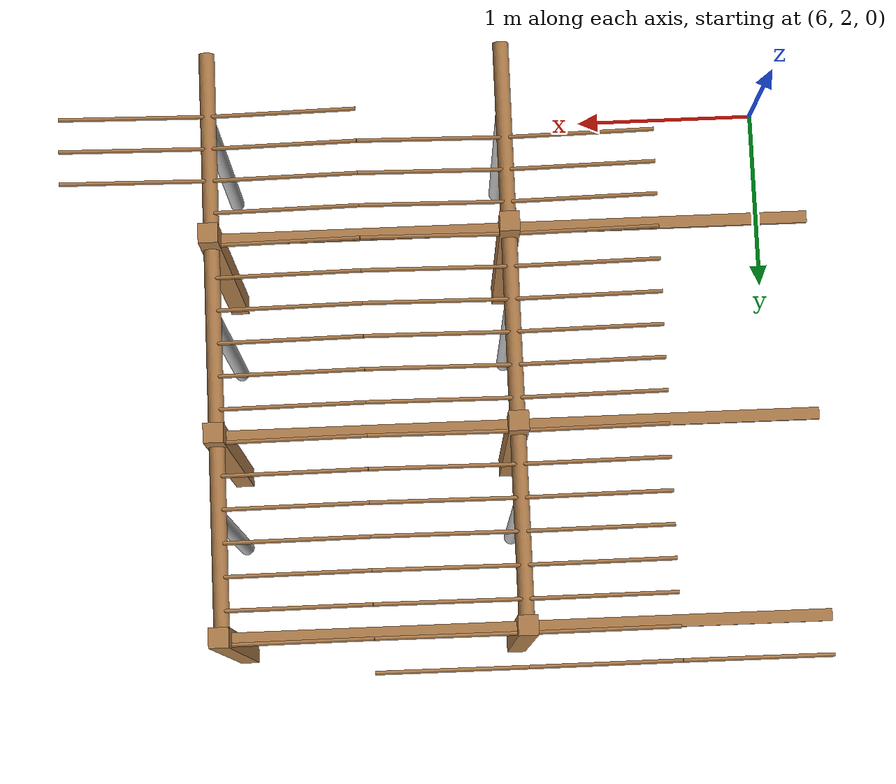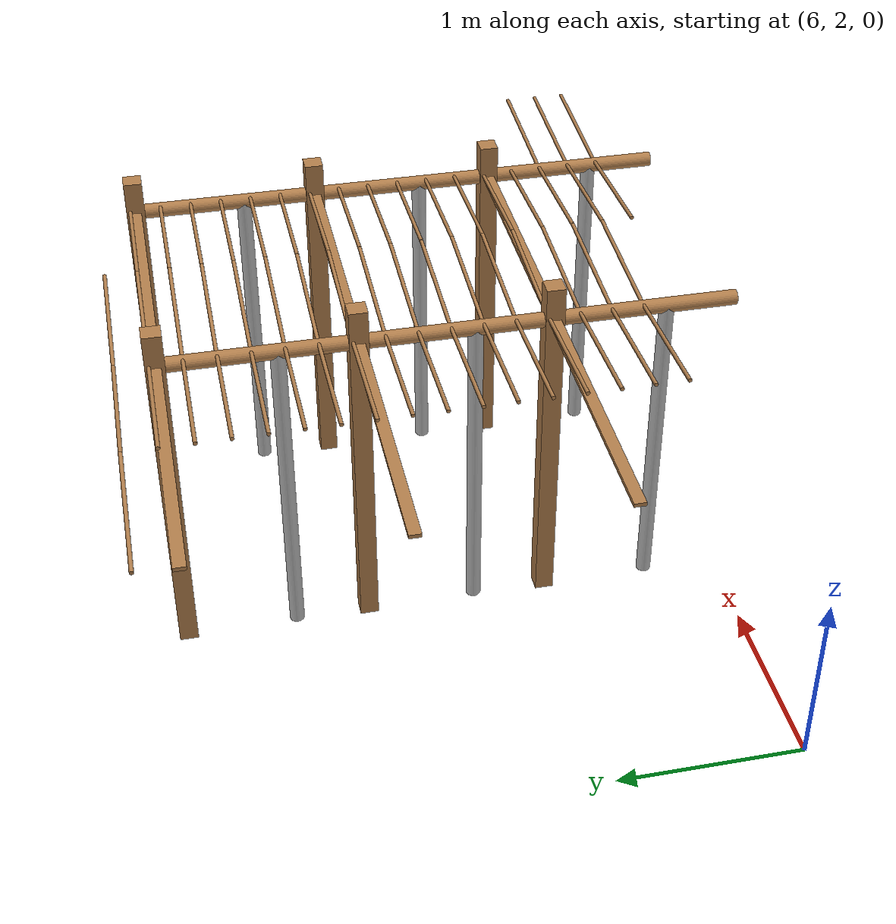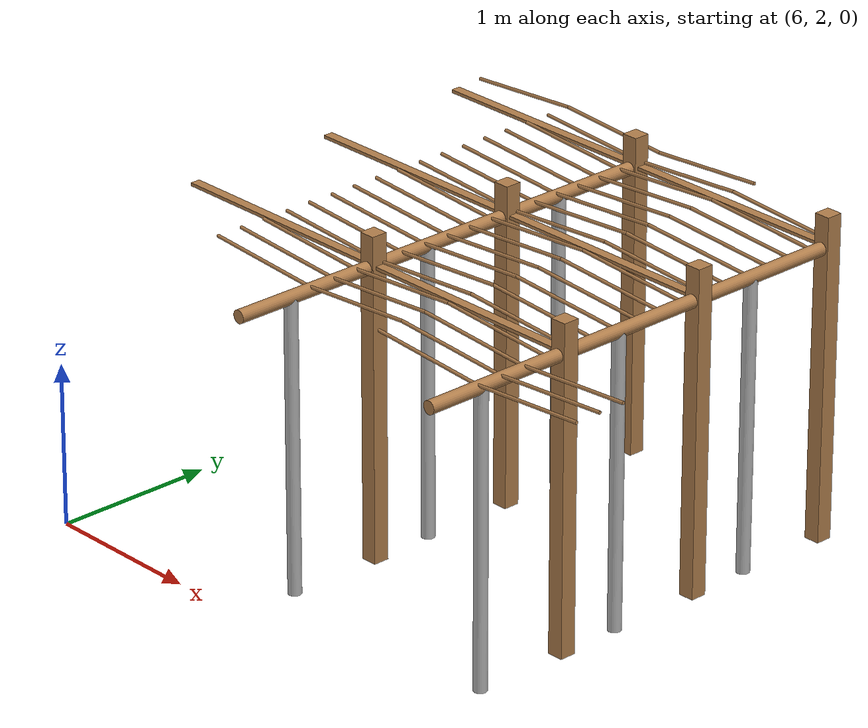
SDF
<sdf version="1.4">
 <model name="pergola">
  <include><name>post_58</name><pose>7.5 3.0 0 0 0 0</pose><uri>model://post</uri></include>
  <include><name>post_59</name><pose>7.5 4.0 0 0 0 0</pose><uri>model://post</uri></include>
  <include><name>post_60</name><pose>7.5 5.0 0 0 0 0</pose><uri>model://post</uri></include>
  <include><name>post_69</name><pose>9.0 3.0 0 0 0 0</pose><uri>model://post</uri></include>
  <include><name>post_70</name><pose>9.0 4.0 0 0 0 0</pose><uri>model://post</uri></include>
  <include><name>post_71</name><pose>9.0 5.0 0 0 0 0</pose><uri>model://post</uri></include>
  <link name="beam_47">
   <pose>6.75 3.0 1.81 0 0 0</pose>
   <collision name="collision"><geometry><box><size>1.5 0.06 0.02</size></box></geometry></collision>
   <visual name="visual">
    <geometry><box><size>1.5 0.06 0.02</size></box></geometry>
    <material><script><name>Gazebo/Wood</name></script></material>
   </visual>
   <inertial>
    <mass>5</mass>
    <inertia>
     <ixx>0.0016666666666666668</ixx>
     <ixy>0.0</ixy>
     <ixz>0.0</ixz>
     <iyy>0.9390000000000001</iyy>
     <iyz>0.0</iyz>
     <izz>0.9376666666666665</izz>
    </inertia>
   </inertial>
  </link>
  <link name="beam_48">
   <pose>6.75 4.0 1.81 0 0 0</pose>
   <collision name="collision"><geometry><box><size>1.5 0.06 0.02</size></box></geometry></collision>
   <visual name="visual">
    <geometry><box><size>1.5 0.06 0.02</size></box></geometry>
    <material><script><name>Gazebo/Wood</name></script></material>
   </visual>
   <inertial>
    <mass>5</mass>
    <inertia>
     <ixx>0.0016666666666666668</ixx>
     <ixy>0.0</ixy>
     <ixz>0.0</ixz>
     <iyy>0.9390000000000001</iyy>
     <iyz>0.0</iyz>
     <izz>0.9376666666666665</izz>
    </inertia>
   </inertial>
  </link>
  <link name="beam_49">
   <pose>6.75 5.0 1.81 0 0 0</pose>
   <collision name="collision"><geometry><box><size>1.5 0.06 0.02</size></box></geometry></collision>
   <visual name="visual">
    <geometry><box><size>1.5 0.06 0.02</size></box></geometry>
    <material><script><name>Gazebo/Wood</name></script></material>
   </visual>
   <inertial>
    <mass>5</mass>
    <inertia>
     <ixx>0.0016666666666666668</ixx>
     <ixy>0.0</ixy>
     <ixz>0.0</ixz>
     <iyy>0.9390000000000001</iyy>
     <iyz>0.0</iyz>
     <izz>0.9376666666666665</izz>
    </inertia>
   </inertial>
  </link>
  <link name="beam_58">
   <pose>8.25 3.0 1.81 0 0 0</pose>
   <collision name="collision"><geometry><box><size>1.5 0.06 0.02</size></box></geometry></collision>
   <visual name="visual">
    <geometry><box><size>1.5 0.06 0.02</size></box></geometry>
    <material><script><name>Gazebo/Wood</name></script></material>
   </visual>
   <inertial>
    <mass>5</mass>
    <inertia>
     <ixx>0.0016666666666666668</ixx>
     <ixy>0.0</ixy>
     <ixz>0.0</ixz>
     <iyy>0.9390000000000001</iyy>
     <iyz>0.0</iyz>
     <izz>0.9376666666666665</izz>
    </inertia>
   </inertial>
  </link>
  <link name="beam_59">
   <pose>8.25 4.0 1.81 0 0 0</pose>
   <collision name="collision"><geometry><box><size>1.5 0.06 0.02</size></box></geometry></collision>
   <visual name="visual">
    <geometry><box><size>1.5 0.06 0.02</size></box></geometry>
    <material><script><name>Gazebo/Wood</name></script></material>
   </visual>
   <inertial>
    <mass>5</mass>
    <inertia>
     <ixx>0.0016666666666666668</ixx>
     <ixy>0.0</ixy>
     <ixz>0.0</ixz>
     <iyy>0.9390000000000001</iyy>
     <iyz>0.0</iyz>
     <izz>0.9376666666666665</izz>
    </inertia>
   </inertial>
  </link>
  <link name="beam_60">
   <pose>8.25 5.0 1.81 0 0 0</pose>
   <collision name="collision"><geometry><box><size>1.5 0.06 0.02</size></box></geometry></collision>
   <visual name="visual">
    <geometry><box><size>1.5 0.06 0.02</size></box></geometry>
    <material><script><name>Gazebo/Wood</name></script></material>
   </visual>
   <inertial>
    <mass>5</mass>
    <inertia>
     <ixx>0.0016666666666666668</ixx>
     <ixy>0.0</ixy>
     <ixz>0.0</ixz>
     <iyy>0.9390000000000001</iyy>
     <iyz>0.0</iyz>
     <izz>0.9376666666666665</izz>
    </inertia>
   </inertial>
  </link>
  <include><name>tree_52</name><pose>7.5 2.4 0 0 0 0</pose><uri>model://tree_trunk</uri></include>
  <include><name>tree_53</name><pose>7.5 3.4 0 0 0 0</pose><uri>model://tree_trunk</uri></include>
  <include><name>tree_54</name><pose>7.5 4.4 0 0 0 0</pose><uri>model://tree_trunk</uri></include>
  <include><name>tree_62</name><pose>9.0 2.4 0 0 0 0</pose><uri>model://tree_trunk</uri></include>
  <include><name>tree_63</name><pose>9.0 3.4 0 0 0 0</pose><uri>model://tree_trunk</uri></include>
  <include><name>tree_64</name><pose>9.0 4.4 0 0 0 0</pose><uri>model://tree_trunk</uri></include>
  <link name="baseBranch_52">
   <pose>7.5 2.5 1.8 1.5707963267948966 0 0</pose>
   <collision name="collision">
    <geometry><cylinder><radius>0.04</radius><length>0.94</length></cylinder></geometry>
   </collision>
   <visual name="visual">
    <geometry><cylinder><radius>0.04</radius><length>0.94</length></cylinder></geometry>
    <material><script><name>Gazebo/WoodFloor</name></script></material>
   </visual>
   <inertial>
    <mass>10</mass>
    <inertia>
     <ixx>0.7403333333333334</ixx>
     <ixy>0.0</ixy>
     <ixz>0.0</ixz>
     <iyy>0.7403333333333334</iyy>
     <iyz>0.0</iyz>
     <izz>0.008</izz>
    </inertia>
   </inertial>
  </link>
  <link name="baseBranch_53">
   <pose>7.5 3.5 1.8 1.5707963267948966 0 0</pose>
   <collision name="collision">
    <geometry><cylinder><radius>0.04</radius><length>0.94</length></cylinder></geometry>
   </collision>
   <visual name="visual">
    <geometry><cylinder><radius>0.04</radius><length>0.94</length></cylinder></geometry>
    <material><script><name>Gazebo/WoodFloor</name></script></material>
   </visual>
   <inertial>
    <mass>10</mass>
    <inertia>
     <ixx>0.7403333333333334</ixx>
     <ixy>0.0</ixy>
     <ixz>0.0</ixz>
     <iyy>0.7403333333333334</iyy>
     <iyz>0.0</iyz>
     <izz>0.008</izz>
    </inertia>
   </inertial>
  </link>
  <link name="baseBranch_54">
   <pose>7.5 4.5 1.8 1.5707963267948966 0 0</pose>
   <collision name="collision">
    <geometry><cylinder><radius>0.04</radius><length>0.94</length></cylinder></geometry>
   </collision>
   <visual name="visual">
    <geometry><cylinder><radius>0.04</radius><length>0.94</length></cylinder></geometry>
    <material><script><name>Gazebo/WoodFloor</name></script></material>
   </visual>
   <inertial>
    <mass>10</mass>
    <inertia>
     <ixx>0.7403333333333334</ixx>
     <ixy>0.0</ixy>
     <ixz>0.0</ixz>
     <iyy>0.7403333333333334</iyy>
     <iyz>0.0</iyz>
     <izz>0.008</izz>
    </inertia>
   </inertial>
  </link>
  <link name="baseBranch_62">
   <pose>9.0 2.5 1.8 1.5707963267948966 0 0</pose>
   <collision name="collision">
    <geometry><cylinder><radius>0.04</radius><length>0.94</length></cylinder></geometry>
   </collision>
   <visual name="visual">
    <geometry><cylinder><radius>0.04</radius><length>0.94</length></cylinder></geometry>
    <material><script><name>Gazebo/WoodFloor</name></script></material>
   </visual>
   <inertial>
    <mass>10</mass>
    <inertia>
     <ixx>0.7403333333333334</ixx>
     <ixy>0.0</ixy>
     <ixz>0.0</ixz>
     <iyy>0.7403333333333334</iyy>
     <iyz>0.0</iyz>
     <izz>0.008</izz>
    </inertia>
   </inertial>
  </link>
  <link name="baseBranch_63">
   <pose>9.0 3.5 1.8 1.5707963267948966 0 0</pose>
   <collision name="collision">
    <geometry><cylinder><radius>0.04</radius><length>0.94</length></cylinder></geometry>
   </collision>
   <visual name="visual">
    <geometry><cylinder><radius>0.04</radius><length>0.94</length></cylinder></geometry>
    <material><script><name>Gazebo/WoodFloor</name></script></material>
   </visual>
   <inertial>
    <mass>10</mass>
    <inertia>
     <ixx>0.7403333333333334</ixx>
     <ixy>0.0</ixy>
     <ixz>0.0</ixz>
     <iyy>0.7403333333333334</iyy>
     <iyz>0.0</iyz>
     <izz>0.008</izz>
    </inertia>
   </inertial>
  </link>
  <link name="baseBranch_64">
   <pose>9.0 4.5 1.8 1.5707963267948966 0 0</pose>
   <collision name="collision">
    <geometry><cylinder><radius>0.04</radius><length>0.94</length></cylinder></geometry>
   </collision>
   <visual name="visual">
    <geometry><cylinder><radius>0.04</radius><length>0.94</length></cylinder></geometry>
    <material><script><name>Gazebo/WoodFloor</name></script></material>
   </visual>
   <inertial>
    <mass>10</mass>
    <inertia>
     <ixx>0.7403333333333334</ixx>
     <ixy>0.0</ixy>
     <ixz>0.0</ixz>
     <iyy>0.7403333333333334</iyy>
     <iyz>0.0</iyz>
     <izz>0.008</izz>
    </inertia>
   </inertial>
  </link>
  <link name="vine_511">
   <pose>7.125 2.53 1.85 0 -1.5042281630190728 0</pose>
   <collision name="collision">
    <geometry><cylinder><radius>0.01</radius><length>0.7516648189186453</length></cylinder></geometry>
   </collision>
   <visual name="visual">
    <geometry><cylinder><radius>0.01</radius><length>0.7516648189186453</length></cylinder></geometry>
    <material><script><name>Gazebo/WoodFloor</name></script></material>
   </visual>
   <inertial>
    <mass>5</mass>
    <inertia>
     <ixx>0.23554166666666657</ixx>
     <ixy>0.0</ixy>
     <ixz>0.0</ixz>
     <iyy>0.23554166666666657</iyy>
     <iyz>0.0</iyz>
     <izz>0.00025</izz>
    </inertia>
   </inertial>
  </link>
  <link name="vine_513">
   <pose>7.125 2.6966666666666663 1.85 0 -1.5042281630190728 0</pose>
   <collision name="collision">
    <geometry><cylinder><radius>0.01</radius><length>0.7516648189186453</length></cylinder></geometry>
   </collision>
   <visual name="visual">
    <geometry><cylinder><radius>0.01</radius><length>0.7516648189186453</length></cylinder></geometry>
    <material><script><name>Gazebo/WoodFloor</name></script></material>
   </visual>
   <inertial>
    <mass>5</mass>
    <inertia>
     <ixx>0.23554166666666657</ixx>
     <ixy>0.0</ixy>
     <ixz>0.0</ixz>
     <iyy>0.23554166666666657</iyy>
     <iyz>0.0</iyz>
     <izz>0.00025</izz>
    </inertia>
   </inertial>
  </link>
  <link name="vine_515">
   <pose>7.125 2.863333333333333 1.85 0 -1.5042281630190728 0</pose>
   <collision name="collision">
    <geometry><cylinder><radius>0.01</radius><length>0.7516648189186453</length></cylinder></geometry>
   </collision>
   <visual name="visual">
    <geometry><cylinder><radius>0.01</radius><length>0.7516648189186453</length></cylinder></geometry>
    <material><script><name>Gazebo/WoodFloor</name></script></material>
   </visual>
   <inertial>
    <mass>5</mass>
    <inertia>
     <ixx>0.23554166666666657</ixx>
     <ixy>0.0</ixy>
     <ixz>0.0</ixz>
     <iyy>0.23554166666666657</iyy>
     <iyz>0.0</iyz>
     <izz>0.00025</izz>
    </inertia>
   </inertial>
  </link>
  <link name="vine_517">
   <pose>7.125 3.03 1.85 0 -1.5042281630190728 0</pose>
   <collision name="collision">
    <geometry><cylinder><radius>0.01</radius><length>0.7516648189186453</length></cylinder></geometry>
   </collision>
   <visual name="visual">
    <geometry><cylinder><radius>0.01</radius><length>0.7516648189186453</length></cylinder></geometry>
    <material><script><name>Gazebo/WoodFloor</name></script></material>
   </visual>
   <inertial>
    <mass>5</mass>
    <inertia>
     <ixx>0.23554166666666657</ixx>
     <ixy>0.0</ixy>
     <ixz>0.0</ixz>
     <iyy>0.23554166666666657</iyy>
     <iyz>0.0</iyz>
     <izz>0.00025</izz>
    </inertia>
   </inertial>
  </link>
  <link name="vine_519">
   <pose>7.125 3.1966666666666663 1.85 0 -1.5042281630190728 0</pose>
   <collision name="collision">
    <geometry><cylinder><radius>0.01</radius><length>0.7516648189186453</length></cylinder></geometry>
   </collision>
   <visual name="visual">
    <geometry><cylinder><radius>0.01</radius><length>0.7516648189186453</length></cylinder></geometry>
    <material><script><name>Gazebo/WoodFloor</name></script></material>
   </visual>
   <inertial>
    <mass>5</mass>
    <inertia>
     <ixx>0.23554166666666657</ixx>
     <ixy>0.0</ixy>
     <ixz>0.0</ixz>
     <iyy>0.23554166666666657</iyy>
     <iyz>0.0</iyz>
     <izz>0.00025</izz>
    </inertia>
   </inertial>
  </link>
  <link name="vine_521">
   <pose>7.125 3.363333333333333 1.85 0 -1.5042281630190728 0</pose>
   <collision name="collision">
    <geometry><cylinder><radius>0.01</radius><length>0.7516648189186453</length></cylinder></geometry>
   </collision>
   <visual name="visual">
    <geometry><cylinder><radius>0.01</radius><length>0.7516648189186453</length></cylinder></geometry>
    <material><script><name>Gazebo/WoodFloor</name></script></material>
   </visual>
   <inertial>
    <mass>5</mass>
    <inertia>
     <ixx>0.23554166666666657</ixx>
     <ixy>0.0</ixy>
     <ixz>0.0</ixz>
     <iyy>0.23554166666666657</iyy>
     <iyz>0.0</iyz>
     <izz>0.00025</izz>
    </inertia>
   </inertial>
  </link>
  <link name="vine_523">
   <pose>7.125 3.53 1.85 0 -1.5042281630190728 0</pose>
   <collision name="collision">
    <geometry><cylinder><radius>0.01</radius><length>0.7516648189186453</length></cylinder></geometry>
   </collision>
   <visual name="visual">
    <geometry><cylinder><radius>0.01</radius><length>0.7516648189186453</length></cylinder></geometry>
    <material><script><name>Gazebo/WoodFloor</name></script></material>
   </visual>
   <inertial>
    <mass>5</mass>
    <inertia>
     <ixx>0.23554166666666657</ixx>
     <ixy>0.0</ixy>
     <ixz>0.0</ixz>
     <iyy>0.23554166666666657</iyy>
     <iyz>0.0</iyz>
     <izz>0.00025</izz>
    </inertia>
   </inertial>
  </link>
  <link name="vine_525">
   <pose>7.125 3.6966666666666663 1.85 0 -1.5042281630190728 0</pose>
   <collision name="collision">
    <geometry><cylinder><radius>0.01</radius><length>0.7516648189186453</length></cylinder></geometry>
   </collision>
   <visual name="visual">
    <geometry><cylinder><radius>0.01</radius><length>0.7516648189186453</length></cylinder></geometry>
    <material><script><name>Gazebo/WoodFloor</name></script></material>
   </visual>
   <inertial>
    <mass>5</mass>
    <inertia>
     <ixx>0.23554166666666657</ixx>
     <ixy>0.0</ixy>
     <ixz>0.0</ixz>
     <iyy>0.23554166666666657</iyy>
     <iyz>0.0</iyz>
     <izz>0.00025</izz>
    </inertia>
   </inertial>
  </link>
  <link name="vine_527">
   <pose>7.125 3.863333333333333 1.85 0 -1.5042281630190728 0</pose>
   <collision name="collision">
    <geometry><cylinder><radius>0.01</radius><length>0.7516648189186453</length></cylinder></geometry>
   </collision>
   <visual name="visual">
    <geometry><cylinder><radius>0.01</radius><length>0.7516648189186453</length></cylinder></geometry>
    <material><script><name>Gazebo/WoodFloor</name></script></material>
   </visual>
   <inertial>
    <mass>5</mass>
    <inertia>
     <ixx>0.23554166666666657</ixx>
     <ixy>0.0</ixy>
     <ixz>0.0</ixz>
     <iyy>0.23554166666666657</iyy>
     <iyz>0.0</iyz>
     <izz>0.00025</izz>
    </inertia>
   </inertial>
  </link>
  <link name="vine_529">
   <pose>7.125 4.03 1.85 0 -1.5042281630190728 0</pose>
   <collision name="collision">
    <geometry><cylinder><radius>0.01</radius><length>0.7516648189186453</length></cylinder></geometry>
   </collision>
   <visual name="visual">
    <geometry><cylinder><radius>0.01</radius><length>0.7516648189186453</length></cylinder></geometry>
    <material><script><name>Gazebo/WoodFloor</name></script></material>
   </visual>
   <inertial>
    <mass>5</mass>
    <inertia>
     <ixx>0.23554166666666657</ixx>
     <ixy>0.0</ixy>
     <ixz>0.0</ixz>
     <iyy>0.23554166666666657</iyy>
     <iyz>0.0</iyz>
     <izz>0.00025</izz>
    </inertia>
   </inertial>
  </link>
  <link name="vine_531">
   <pose>7.125 4.196666666666666 1.85 0 -1.5042281630190728 0</pose>
   <collision name="collision">
    <geometry><cylinder><radius>0.01</radius><length>0.7516648189186453</length></cylinder></geometry>
   </collision>
   <visual name="visual">
    <geometry><cylinder><radius>0.01</radius><length>0.7516648189186453</length></cylinder></geometry>
    <material><script><name>Gazebo/WoodFloor</name></script></material>
   </visual>
   <inertial>
    <mass>5</mass>
    <inertia>
     <ixx>0.23554166666666657</ixx>
     <ixy>0.0</ixy>
     <ixz>0.0</ixz>
     <iyy>0.23554166666666657</iyy>
     <iyz>0.0</iyz>
     <izz>0.00025</izz>
    </inertia>
   </inertial>
  </link>
  <link name="vine_533">
   <pose>7.125 4.363333333333333 1.85 0 -1.5042281630190728 0</pose>
   <collision name="collision">
    <geometry><cylinder><radius>0.01</radius><length>0.7516648189186453</length></cylinder></geometry>
   </collision>
   <visual name="visual">
    <geometry><cylinder><radius>0.01</radius><length>0.7516648189186453</length></cylinder></geometry>
    <material><script><name>Gazebo/WoodFloor</name></script></material>
   </visual>
   <inertial>
    <mass>5</mass>
    <inertia>
     <ixx>0.23554166666666657</ixx>
     <ixy>0.0</ixy>
     <ixz>0.0</ixz>
     <iyy>0.23554166666666657</iyy>
     <iyz>0.0</iyz>
     <izz>0.00025</izz>
    </inertia>
   </inertial>
  </link>
  <link name="vine_535">
   <pose>7.125 4.53 1.85 0 -1.5042281630190728 0</pose>
   <collision name="collision">
    <geometry><cylinder><radius>0.01</radius><length>0.7516648189186453</length></cylinder></geometry>
   </collision>
   <visual name="visual">
    <geometry><cylinder><radius>0.01</radius><length>0.7516648189186453</length></cylinder></geometry>
    <material><script><name>Gazebo/WoodFloor</name></script></material>
   </visual>
   <inertial>
    <mass>5</mass>
    <inertia>
     <ixx>0.23554166666666657</ixx>
     <ixy>0.0</ixy>
     <ixz>0.0</ixz>
     <iyy>0.23554166666666657</iyy>
     <iyz>0.0</iyz>
     <izz>0.00025</izz>
    </inertia>
   </inertial>
  </link>
  <link name="vine_537">
   <pose>7.125 4.696666666666666 1.85 0 -1.5042281630190728 0</pose>
   <collision name="collision">
    <geometry><cylinder><radius>0.01</radius><length>0.7516648189186453</length></cylinder></geometry>
   </collision>
   <visual name="visual">
    <geometry><cylinder><radius>0.01</radius><length>0.7516648189186453</length></cylinder></geometry>
    <material><script><name>Gazebo/WoodFloor</name></script></material>
   </visual>
   <inertial>
    <mass>5</mass>
    <inertia>
     <ixx>0.23554166666666657</ixx>
     <ixy>0.0</ixy>
     <ixz>0.0</ixz>
     <iyy>0.23554166666666657</iyy>
     <iyz>0.0</iyz>
     <izz>0.00025</izz>
    </inertia>
   </inertial>
  </link>
  <link name="vine_539">
   <pose>7.125 4.863333333333333 1.85 0 -1.5042281630190728 0</pose>
   <collision name="collision">
    <geometry><cylinder><radius>0.01</radius><length>0.7516648189186453</length></cylinder></geometry>
   </collision>
   <visual name="visual">
    <geometry><cylinder><radius>0.01</radius><length>0.7516648189186453</length></cylinder></geometry>
    <material><script><name>Gazebo/WoodFloor</name></script></material>
   </visual>
   <inertial>
    <mass>5</mass>
    <inertia>
     <ixx>0.23554166666666657</ixx>
     <ixy>0.0</ixy>
     <ixz>0.0</ixz>
     <iyy>0.23554166666666657</iyy>
     <iyz>0.0</iyz>
     <izz>0.00025</izz>
    </inertia>
   </inertial>
  </link>
  <link name="vine_541">
   <pose>7.125 5.03 1.85 0 -1.5042281630190728 0</pose>
   <collision name="collision">
    <geometry><cylinder><radius>0.01</radius><length>0.7516648189186453</length></cylinder></geometry>
   </collision>
   <visual name="visual">
    <geometry><cylinder><radius>0.01</radius><length>0.7516648189186453</length></cylinder></geometry>
    <material><script><name>Gazebo/WoodFloor</name></script></material>
   </visual>
   <inertial>
    <mass>5</mass>
    <inertia>
     <ixx>0.23554166666666657</ixx>
     <ixy>0.0</ixy>
     <ixz>0.0</ixz>
     <iyy>0.23554166666666657</iyy>
     <iyz>0.0</iyz>
     <izz>0.00025</izz>
    </inertia>
   </inertial>
  </link>
  <link name="vine_542">
   <pose>6.375 5.196666666666666 1.85 0 1.5042281630190728 0</pose>
   <collision name="collision">
    <geometry><cylinder><radius>0.01</radius><length>0.7516648189186453</length></cylinder></geometry>
   </collision>
   <visual name="visual">
    <geometry><cylinder><radius>0.01</radius><length>0.7516648189186453</length></cylinder></geometry>
    <material><script><name>Gazebo/WoodFloor</name></script></material>
   </visual>
   <inertial>
    <mass>5</mass>
    <inertia>
     <ixx>0.23554166666666657</ixx>
     <ixy>0.0</ixy>
     <ixz>0.0</ixz>
     <iyy>0.23554166666666657</iyy>
     <iyz>0.0</iyz>
     <izz>0.00025</izz>
    </inertia>
   </inertial>
  </link>
  <link name="vine_543">
   <pose>7.125 5.196666666666666 1.85 0 -1.5042281630190728 0</pose>
   <collision name="collision">
    <geometry><cylinder><radius>0.01</radius><length>0.7516648189186453</length></cylinder></geometry>
   </collision>
   <visual name="visual">
    <geometry><cylinder><radius>0.01</radius><length>0.7516648189186453</length></cylinder></geometry>
    <material><script><name>Gazebo/WoodFloor</name></script></material>
   </visual>
   <inertial>
    <mass>5</mass>
    <inertia>
     <ixx>0.23554166666666657</ixx>
     <ixy>0.0</ixy>
     <ixz>0.0</ixz>
     <iyy>0.23554166666666657</iyy>
     <iyz>0.0</iyz>
     <izz>0.00025</izz>
    </inertia>
   </inertial>
  </link>
  <link name="vine_629">
   <pose>8.625 2.363333333333333 1.85 0 -1.5042281630190728 0</pose>
   <collision name="collision">
    <geometry><cylinder><radius>0.01</radius><length>0.7516648189186453</length></cylinder></geometry>
   </collision>
   <visual name="visual">
    <geometry><cylinder><radius>0.01</radius><length>0.7516648189186453</length></cylinder></geometry>
    <material><script><name>Gazebo/WoodFloor</name></script></material>
   </visual>
   <inertial>
    <mass>5</mass>
    <inertia>
     <ixx>0.23554166666666657</ixx>
     <ixy>0.0</ixy>
     <ixz>0.0</ixz>
     <iyy>0.23554166666666657</iyy>
     <iyz>0.0</iyz>
     <izz>0.00025</izz>
    </inertia>
   </inertial>
  </link>
  <link name="vine_630">
   <pose>7.875 2.53 1.85 0 1.5042281630190728 0</pose>
   <collision name="collision">
    <geometry><cylinder><radius>0.01</radius><length>0.7516648189186453</length></cylinder></geometry>
   </collision>
   <visual name="visual">
    <geometry><cylinder><radius>0.01</radius><length>0.7516648189186453</length></cylinder></geometry>
    <material><script><name>Gazebo/WoodFloor</name></script></material>
   </visual>
   <inertial>
    <mass>5</mass>
    <inertia>
     <ixx>0.23554166666666657</ixx>
     <ixy>0.0</ixy>
     <ixz>0.0</ixz>
     <iyy>0.23554166666666657</iyy>
     <iyz>0.0</iyz>
     <izz>0.00025</izz>
    </inertia>
   </inertial>
  </link>
  <link name="vine_631">
   <pose>8.625 2.53 1.85 0 -1.5042281630190728 0</pose>
   <collision name="collision">
    <geometry><cylinder><radius>0.01</radius><length>0.7516648189186453</length></cylinder></geometry>
   </collision>
   <visual name="visual">
    <geometry><cylinder><radius>0.01</radius><length>0.7516648189186453</length></cylinder></geometry>
    <material><script><name>Gazebo/WoodFloor</name></script></material>
   </visual>
   <inertial>
    <mass>5</mass>
    <inertia>
     <ixx>0.23554166666666657</ixx>
     <ixy>0.0</ixy>
     <ixz>0.0</ixz>
     <iyy>0.23554166666666657</iyy>
     <iyz>0.0</iyz>
     <izz>0.00025</izz>
    </inertia>
   </inertial>
  </link>
  <link name="vine_632">
   <pose>7.875 2.6966666666666663 1.85 0 1.5042281630190728 0</pose>
   <collision name="collision">
    <geometry><cylinder><radius>0.01</radius><length>0.7516648189186453</length></cylinder></geometry>
   </collision>
   <visual name="visual">
    <geometry><cylinder><radius>0.01</radius><length>0.7516648189186453</length></cylinder></geometry>
    <material><script><name>Gazebo/WoodFloor</name></script></material>
   </visual>
   <inertial>
    <mass>5</mass>
    <inertia>
     <ixx>0.23554166666666657</ixx>
     <ixy>0.0</ixy>
     <ixz>0.0</ixz>
     <iyy>0.23554166666666657</iyy>
     <iyz>0.0</iyz>
     <izz>0.00025</izz>
    </inertia>
   </inertial>
  </link>
  <link name="vine_633">
   <pose>8.625 2.6966666666666663 1.85 0 -1.5042281630190728 0</pose>
   <collision name="collision">
    <geometry><cylinder><radius>0.01</radius><length>0.7516648189186453</length></cylinder></geometry>
   </collision>
   <visual name="visual">
    <geometry><cylinder><radius>0.01</radius><length>0.7516648189186453</length></cylinder></geometry>
    <material><script><name>Gazebo/WoodFloor</name></script></material>
   </visual>
   <inertial>
    <mass>5</mass>
    <inertia>
     <ixx>0.23554166666666657</ixx>
     <ixy>0.0</ixy>
     <ixz>0.0</ixz>
     <iyy>0.23554166666666657</iyy>
     <iyz>0.0</iyz>
     <izz>0.00025</izz>
    </inertia>
   </inertial>
  </link>
  <link name="vine_634">
   <pose>7.875 2.863333333333333 1.85 0 1.5042281630190728 0</pose>
   <collision name="collision">
    <geometry><cylinder><radius>0.01</radius><length>0.7516648189186453</length></cylinder></geometry>
   </collision>
   <visual name="visual">
    <geometry><cylinder><radius>0.01</radius><length>0.7516648189186453</length></cylinder></geometry>
    <material><script><name>Gazebo/WoodFloor</name></script></material>
   </visual>
   <inertial>
    <mass>5</mass>
    <inertia>
     <ixx>0.23554166666666657</ixx>
     <ixy>0.0</ixy>
     <ixz>0.0</ixz>
     <iyy>0.23554166666666657</iyy>
     <iyz>0.0</iyz>
     <izz>0.00025</izz>
    </inertia>
   </inertial>
  </link>
  <link name="vine_635">
   <pose>8.625 2.863333333333333 1.85 0 -1.5042281630190728 0</pose>
   <collision name="collision">
    <geometry><cylinder><radius>0.01</radius><length>0.7516648189186453</length></cylinder></geometry>
   </collision>
   <visual name="visual">
    <geometry><cylinder><radius>0.01</radius><length>0.7516648189186453</length></cylinder></geometry>
    <material><script><name>Gazebo/WoodFloor</name></script></material>
   </visual>
   <inertial>
    <mass>5</mass>
    <inertia>
     <ixx>0.23554166666666657</ixx>
     <ixy>0.0</ixy>
     <ixz>0.0</ixz>
     <iyy>0.23554166666666657</iyy>
     <iyz>0.0</iyz>
     <izz>0.00025</izz>
    </inertia>
   </inertial>
  </link>
  <link name="vine_636">
   <pose>7.875 3.03 1.85 0 1.5042281630190728 0</pose>
   <collision name="collision">
    <geometry><cylinder><radius>0.01</radius><length>0.7516648189186453</length></cylinder></geometry>
   </collision>
   <visual name="visual">
    <geometry><cylinder><radius>0.01</radius><length>0.7516648189186453</length></cylinder></geometry>
    <material><script><name>Gazebo/WoodFloor</name></script></material>
   </visual>
   <inertial>
    <mass>5</mass>
    <inertia>
     <ixx>0.23554166666666657</ixx>
     <ixy>0.0</ixy>
     <ixz>0.0</ixz>
     <iyy>0.23554166666666657</iyy>
     <iyz>0.0</iyz>
     <izz>0.00025</izz>
    </inertia>
   </inertial>
  </link>
  <link name="vine_637">
   <pose>8.625 3.03 1.85 0 -1.5042281630190728 0</pose>
   <collision name="collision">
    <geometry><cylinder><radius>0.01</radius><length>0.7516648189186453</length></cylinder></geometry>
   </collision>
   <visual name="visual">
    <geometry><cylinder><radius>0.01</radius><length>0.7516648189186453</length></cylinder></geometry>
    <material><script><name>Gazebo/WoodFloor</name></script></material>
   </visual>
   <inertial>
    <mass>5</mass>
    <inertia>
     <ixx>0.23554166666666657</ixx>
     <ixy>0.0</ixy>
     <ixz>0.0</ixz>
     <iyy>0.23554166666666657</iyy>
     <iyz>0.0</iyz>
     <izz>0.00025</izz>
    </inertia>
   </inertial>
  </link>
  <link name="vine_638">
   <pose>7.875 3.1966666666666663 1.85 0 1.5042281630190728 0</pose>
   <collision name="collision">
    <geometry><cylinder><radius>0.01</radius><length>0.7516648189186453</length></cylinder></geometry>
   </collision>
   <visual name="visual">
    <geometry><cylinder><radius>0.01</radius><length>0.7516648189186453</length></cylinder></geometry>
    <material><script><name>Gazebo/WoodFloor</name></script></material>
   </visual>
   <inertial>
    <mass>5</mass>
    <inertia>
     <ixx>0.23554166666666657</ixx>
     <ixy>0.0</ixy>
     <ixz>0.0</ixz>
     <iyy>0.23554166666666657</iyy>
     <iyz>0.0</iyz>
     <izz>0.00025</izz>
    </inertia>
   </inertial>
  </link>
  <link name="vine_639">
   <pose>8.625 3.1966666666666663 1.85 0 -1.5042281630190728 0</pose>
   <collision name="collision">
    <geometry><cylinder><radius>0.01</radius><length>0.7516648189186453</length></cylinder></geometry>
   </collision>
   <visual name="visual">
    <geometry><cylinder><radius>0.01</radius><length>0.7516648189186453</length></cylinder></geometry>
    <material><script><name>Gazebo/WoodFloor</name></script></material>
   </visual>
   <inertial>
    <mass>5</mass>
    <inertia>
     <ixx>0.23554166666666657</ixx>
     <ixy>0.0</ixy>
     <ixz>0.0</ixz>
     <iyy>0.23554166666666657</iyy>
     <iyz>0.0</iyz>
     <izz>0.00025</izz>
    </inertia>
   </inertial>
  </link>
  <link name="vine_640">
   <pose>7.875 3.363333333333333 1.85 0 1.5042281630190728 0</pose>
   <collision name="collision">
    <geometry><cylinder><radius>0.01</radius><length>0.7516648189186453</length></cylinder></geometry>
   </collision>
   <visual name="visual">
    <geometry><cylinder><radius>0.01</radius><length>0.7516648189186453</length></cylinder></geometry>
    <material><script><name>Gazebo/WoodFloor</name></script></material>
   </visual>
   <inertial>
    <mass>5</mass>
    <inertia>
     <ixx>0.23554166666666657</ixx>
     <ixy>0.0</ixy>
     <ixz>0.0</ixz>
     <iyy>0.23554166666666657</iyy>
     <iyz>0.0</iyz>
     <izz>0.00025</izz>
    </inertia>
   </inertial>
  </link>
  <link name="vine_641">
   <pose>8.625 3.363333333333333 1.85 0 -1.5042281630190728 0</pose>
   <collision name="collision">
    <geometry><cylinder><radius>0.01</radius><length>0.7516648189186453</length></cylinder></geometry>
   </collision>
   <visual name="visual">
    <geometry><cylinder><radius>0.01</radius><length>0.7516648189186453</length></cylinder></geometry>
    <material><script><name>Gazebo/WoodFloor</name></script></material>
   </visual>
   <inertial>
    <mass>5</mass>
    <inertia>
     <ixx>0.23554166666666657</ixx>
     <ixy>0.0</ixy>
     <ixz>0.0</ixz>
     <iyy>0.23554166666666657</iyy>
     <iyz>0.0</iyz>
     <izz>0.00025</izz>
    </inertia>
   </inertial>
  </link>
  <link name="vine_642">
   <pose>7.875 3.53 1.85 0 1.5042281630190728 0</pose>
   <collision name="collision">
    <geometry><cylinder><radius>0.01</radius><length>0.7516648189186453</length></cylinder></geometry>
   </collision>
   <visual name="visual">
    <geometry><cylinder><radius>0.01</radius><length>0.7516648189186453</length></cylinder></geometry>
    <material><script><name>Gazebo/WoodFloor</name></script></material>
   </visual>
   <inertial>
    <mass>5</mass>
    <inertia>
     <ixx>0.23554166666666657</ixx>
     <ixy>0.0</ixy>
     <ixz>0.0</ixz>
     <iyy>0.23554166666666657</iyy>
     <iyz>0.0</iyz>
     <izz>0.00025</izz>
    </inertia>
   </inertial>
  </link>
  <link name="vine_643">
   <pose>8.625 3.53 1.85 0 -1.5042281630190728 0</pose>
   <collision name="collision">
    <geometry><cylinder><radius>0.01</radius><length>0.7516648189186453</length></cylinder></geometry>
   </collision>
   <visual name="visual">
    <geometry><cylinder><radius>0.01</radius><length>0.7516648189186453</length></cylinder></geometry>
    <material><script><name>Gazebo/WoodFloor</name></script></material>
   </visual>
   <inertial>
    <mass>5</mass>
    <inertia>
     <ixx>0.23554166666666657</ixx>
     <ixy>0.0</ixy>
     <ixz>0.0</ixz>
     <iyy>0.23554166666666657</iyy>
     <iyz>0.0</iyz>
     <izz>0.00025</izz>
    </inertia>
   </inertial>
  </link>
  <link name="vine_644">
   <pose>7.875 3.6966666666666663 1.85 0 1.5042281630190728 0</pose>
   <collision name="collision">
    <geometry><cylinder><radius>0.01</radius><length>0.7516648189186453</length></cylinder></geometry>
   </collision>
   <visual name="visual">
    <geometry><cylinder><radius>0.01</radius><length>0.7516648189186453</length></cylinder></geometry>
    <material><script><name>Gazebo/WoodFloor</name></script></material>
   </visual>
   <inertial>
    <mass>5</mass>
    <inertia>
     <ixx>0.23554166666666657</ixx>
     <ixy>0.0</ixy>
     <ixz>0.0</ixz>
     <iyy>0.23554166666666657</iyy>
     <iyz>0.0</iyz>
     <izz>0.00025</izz>
    </inertia>
   </inertial>
  </link>
  <link name="vine_645">
   <pose>8.625 3.6966666666666663 1.85 0 -1.5042281630190728 0</pose>
   <collision name="collision">
    <geometry><cylinder><radius>0.01</radius><length>0.7516648189186453</length></cylinder></geometry>
   </collision>
   <visual name="visual">
    <geometry><cylinder><radius>0.01</radius><length>0.7516648189186453</length></cylinder></geometry>
    <material><script><name>Gazebo/WoodFloor</name></script></material>
   </visual>
   <inertial>
    <mass>5</mass>
    <inertia>
     <ixx>0.23554166666666657</ixx>
     <ixy>0.0</ixy>
     <ixz>0.0</ixz>
     <iyy>0.23554166666666657</iyy>
     <iyz>0.0</iyz>
     <izz>0.00025</izz>
    </inertia>
   </inertial>
  </link>
  <link name="vine_646">
   <pose>7.875 3.863333333333333 1.85 0 1.5042281630190728 0</pose>
   <collision name="collision">
    <geometry><cylinder><radius>0.01</radius><length>0.7516648189186453</length></cylinder></geometry>
   </collision>
   <visual name="visual">
    <geometry><cylinder><radius>0.01</radius><length>0.7516648189186453</length></cylinder></geometry>
    <material><script><name>Gazebo/WoodFloor</name></script></material>
   </visual>
   <inertial>
    <mass>5</mass>
    <inertia>
     <ixx>0.23554166666666657</ixx>
     <ixy>0.0</ixy>
     <ixz>0.0</ixz>
     <iyy>0.23554166666666657</iyy>
     <iyz>0.0</iyz>
     <izz>0.00025</izz>
    </inertia>
   </inertial>
  </link>
  <link name="vine_647">
   <pose>8.625 3.863333333333333 1.85 0 -1.5042281630190728 0</pose>
   <collision name="collision">
    <geometry><cylinder><radius>0.01</radius><length>0.7516648189186453</length></cylinder></geometry>
   </collision>
   <visual name="visual">
    <geometry><cylinder><radius>0.01</radius><length>0.7516648189186453</length></cylinder></geometry>
    <material><script><name>Gazebo/WoodFloor</name></script></material>
   </visual>
   <inertial>
    <mass>5</mass>
    <inertia>
     <ixx>0.23554166666666657</ixx>
     <ixy>0.0</ixy>
     <ixz>0.0</ixz>
     <iyy>0.23554166666666657</iyy>
     <iyz>0.0</iyz>
     <izz>0.00025</izz>
    </inertia>
   </inertial>
  </link>
  <link name="vine_648">
   <pose>7.875 4.03 1.85 0 1.5042281630190728 0</pose>
   <collision name="collision">
    <geometry><cylinder><radius>0.01</radius><length>0.7516648189186453</length></cylinder></geometry>
   </collision>
   <visual name="visual">
    <geometry><cylinder><radius>0.01</radius><length>0.7516648189186453</length></cylinder></geometry>
    <material><script><name>Gazebo/WoodFloor</name></script></material>
   </visual>
   <inertial>
    <mass>5</mass>
    <inertia>
     <ixx>0.23554166666666657</ixx>
     <ixy>0.0</ixy>
     <ixz>0.0</ixz>
     <iyy>0.23554166666666657</iyy>
     <iyz>0.0</iyz>
     <izz>0.00025</izz>
    </inertia>
   </inertial>
  </link>
  <link name="vine_649">
   <pose>8.625 4.03 1.85 0 -1.5042281630190728 0</pose>
   <collision name="collision">
    <geometry><cylinder><radius>0.01</radius><length>0.7516648189186453</length></cylinder></geometry>
   </collision>
   <visual name="visual">
    <geometry><cylinder><radius>0.01</radius><length>0.7516648189186453</length></cylinder></geometry>
    <material><script><name>Gazebo/WoodFloor</name></script></material>
   </visual>
   <inertial>
    <mass>5</mass>
    <inertia>
     <ixx>0.23554166666666657</ixx>
     <ixy>0.0</ixy>
     <ixz>0.0</ixz>
     <iyy>0.23554166666666657</iyy>
     <iyz>0.0</iyz>
     <izz>0.00025</izz>
    </inertia>
   </inertial>
  </link>
  <link name="vine_650">
   <pose>7.875 4.196666666666666 1.85 0 1.5042281630190728 0</pose>
   <collision name="collision">
    <geometry><cylinder><radius>0.01</radius><length>0.7516648189186453</length></cylinder></geometry>
   </collision>
   <visual name="visual">
    <geometry><cylinder><radius>0.01</radius><length>0.7516648189186453</length></cylinder></geometry>
    <material><script><name>Gazebo/WoodFloor</name></script></material>
   </visual>
   <inertial>
    <mass>5</mass>
    <inertia>
     <ixx>0.23554166666666657</ixx>
     <ixy>0.0</ixy>
     <ixz>0.0</ixz>
     <iyy>0.23554166666666657</iyy>
     <iyz>0.0</iyz>
     <izz>0.00025</izz>
    </inertia>
   </inertial>
  </link>
  <link name="vine_651">
   <pose>8.625 4.196666666666666 1.85 0 -1.5042281630190728 0</pose>
   <collision name="collision">
    <geometry><cylinder><radius>0.01</radius><length>0.7516648189186453</length></cylinder></geometry>
   </collision>
   <visual name="visual">
    <geometry><cylinder><radius>0.01</radius><length>0.7516648189186453</length></cylinder></geometry>
    <material><script><name>Gazebo/WoodFloor</name></script></material>
   </visual>
   <inertial>
    <mass>5</mass>
    <inertia>
     <ixx>0.23554166666666657</ixx>
     <ixy>0.0</ixy>
     <ixz>0.0</ixz>
     <iyy>0.23554166666666657</iyy>
     <iyz>0.0</iyz>
     <izz>0.00025</izz>
    </inertia>
   </inertial>
  </link>
  <link name="vine_652">
   <pose>7.875 4.363333333333333 1.85 0 1.5042281630190728 0</pose>
   <collision name="collision">
    <geometry><cylinder><radius>0.01</radius><length>0.7516648189186453</length></cylinder></geometry>
   </collision>
   <visual name="visual">
    <geometry><cylinder><radius>0.01</radius><length>0.7516648189186453</length></cylinder></geometry>
    <material><script><name>Gazebo/WoodFloor</name></script></material>
   </visual>
   <inertial>
    <mass>5</mass>
    <inertia>
     <ixx>0.23554166666666657</ixx>
     <ixy>0.0</ixy>
     <ixz>0.0</ixz>
     <iyy>0.23554166666666657</iyy>
     <iyz>0.0</iyz>
     <izz>0.00025</izz>
    </inertia>
   </inertial>
  </link>
  <link name="vine_653">
   <pose>8.625 4.363333333333333 1.85 0 -1.5042281630190728 0</pose>
   <collision name="collision">
    <geometry><cylinder><radius>0.01</radius><length>0.7516648189186453</length></cylinder></geometry>
   </collision>
   <visual name="visual">
    <geometry><cylinder><radius>0.01</radius><length>0.7516648189186453</length></cylinder></geometry>
    <material><script><name>Gazebo/WoodFloor</name></script></material>
   </visual>
   <inertial>
    <mass>5</mass>
    <inertia>
     <ixx>0.23554166666666657</ixx>
     <ixy>0.0</ixy>
     <ixz>0.0</ixz>
     <iyy>0.23554166666666657</iyy>
     <iyz>0.0</iyz>
     <izz>0.00025</izz>
    </inertia>
   </inertial>
  </link>
  <link name="vine_654">
   <pose>7.875 4.53 1.85 0 1.5042281630190728 0</pose>
   <collision name="collision">
    <geometry><cylinder><radius>0.01</radius><length>0.7516648189186453</length></cylinder></geometry>
   </collision>
   <visual name="visual">
    <geometry><cylinder><radius>0.01</radius><length>0.7516648189186453</length></cylinder></geometry>
    <material><script><name>Gazebo/WoodFloor</name></script></material>
   </visual>
   <inertial>
    <mass>5</mass>
    <inertia>
     <ixx>0.23554166666666657</ixx>
     <ixy>0.0</ixy>
     <ixz>0.0</ixz>
     <iyy>0.23554166666666657</iyy>
     <iyz>0.0</iyz>
     <izz>0.00025</izz>
    </inertia>
   </inertial>
  </link>
  <link name="vine_655">
   <pose>8.625 4.53 1.85 0 -1.5042281630190728 0</pose>
   <collision name="collision">
    <geometry><cylinder><radius>0.01</radius><length>0.7516648189186453</length></cylinder></geometry>
   </collision>
   <visual name="visual">
    <geometry><cylinder><radius>0.01</radius><length>0.7516648189186453</length></cylinder></geometry>
    <material><script><name>Gazebo/WoodFloor</name></script></material>
   </visual>
   <inertial>
    <mass>5</mass>
    <inertia>
     <ixx>0.23554166666666657</ixx>
     <ixy>0.0</ixy>
     <ixz>0.0</ixz>
     <iyy>0.23554166666666657</iyy>
     <iyz>0.0</iyz>
     <izz>0.00025</izz>
    </inertia>
   </inertial>
  </link>
  <link name="vine_656">
   <pose>7.875 4.696666666666666 1.85 0 1.5042281630190728 0</pose>
   <collision name="collision">
    <geometry><cylinder><radius>0.01</radius><length>0.7516648189186453</length></cylinder></geometry>
   </collision>
   <visual name="visual">
    <geometry><cylinder><radius>0.01</radius><length>0.7516648189186453</length></cylinder></geometry>
    <material><script><name>Gazebo/WoodFloor</name></script></material>
   </visual>
   <inertial>
    <mass>5</mass>
    <inertia>
     <ixx>0.23554166666666657</ixx>
     <ixy>0.0</ixy>
     <ixz>0.0</ixz>
     <iyy>0.23554166666666657</iyy>
     <iyz>0.0</iyz>
     <izz>0.00025</izz>
    </inertia>
   </inertial>
  </link>
  <link name="vine_657">
   <pose>8.625 4.696666666666666 1.85 0 -1.5042281630190728 0</pose>
   <collision name="collision">
    <geometry><cylinder><radius>0.01</radius><length>0.7516648189186453</length></cylinder></geometry>
   </collision>
   <visual name="visual">
    <geometry><cylinder><radius>0.01</radius><length>0.7516648189186453</length></cylinder></geometry>
    <material><script><name>Gazebo/WoodFloor</name></script></material>
   </visual>
   <inertial>
    <mass>5</mass>
    <inertia>
     <ixx>0.23554166666666657</ixx>
     <ixy>0.0</ixy>
     <ixz>0.0</ixz>
     <iyy>0.23554166666666657</iyy>
     <iyz>0.0</iyz>
     <izz>0.00025</izz>
    </inertia>
   </inertial>
  </link>
  <link name="vine_658">
   <pose>7.875 4.863333333333333 1.85 0 1.5042281630190728 0</pose>
   <collision name="collision">
    <geometry><cylinder><radius>0.01</radius><length>0.7516648189186453</length></cylinder></geometry>
   </collision>
   <visual name="visual">
    <geometry><cylinder><radius>0.01</radius><length>0.7516648189186453</length></cylinder></geometry>
    <material><script><name>Gazebo/WoodFloor</name></script></material>
   </visual>
   <inertial>
    <mass>5</mass>
    <inertia>
     <ixx>0.23554166666666657</ixx>
     <ixy>0.0</ixy>
     <ixz>0.0</ixz>
     <iyy>0.23554166666666657</iyy>
     <iyz>0.0</iyz>
     <izz>0.00025</izz>
    </inertia>
   </inertial>
  </link>
  <link name="vine_659">
   <pose>8.625 4.863333333333333 1.85 0 -1.5042281630190728 0</pose>
   <collision name="collision">
    <geometry><cylinder><radius>0.01</radius><length>0.7516648189186453</length></cylinder></geometry>
   </collision>
   <visual name="visual">
    <geometry><cylinder><radius>0.01</radius><length>0.7516648189186453</length></cylinder></geometry>
    <material><script><name>Gazebo/WoodFloor</name></script></material>
   </visual>
   <inertial>
    <mass>5</mass>
    <inertia>
     <ixx>0.23554166666666657</ixx>
     <ixy>0.0</ixy>
     <ixz>0.0</ixz>
     <iyy>0.23554166666666657</iyy>
     <iyz>0.0</iyz>
     <izz>0.00025</izz>
    </inertia>
   </inertial>
  </link>
  <link name="vine_660">
   <pose>7.875 5.03 1.85 0 1.5042281630190728 0</pose>
   <collision name="collision">
    <geometry><cylinder><radius>0.01</radius><length>0.7516648189186453</length></cylinder></geometry>
   </collision>
   <visual name="visual">
    <geometry><cylinder><radius>0.01</radius><length>0.7516648189186453</length></cylinder></geometry>
    <material><script><name>Gazebo/WoodFloor</name></script></material>
   </visual>
   <inertial>
    <mass>5</mass>
    <inertia>
     <ixx>0.23554166666666657</ixx>
     <ixy>0.0</ixy>
     <ixz>0.0</ixz>
     <iyy>0.23554166666666657</iyy>
     <iyz>0.0</iyz>
     <izz>0.00025</izz>
    </inertia>
   </inertial>
  </link>
  <link name="vine_661">
   <pose>8.625 5.03 1.85 0 -1.5042281630190728 0</pose>
   <collision name="collision">
    <geometry><cylinder><radius>0.01</radius><length>0.7516648189186453</length></cylinder></geometry>
   </collision>
   <visual name="visual">
    <geometry><cylinder><radius>0.01</radius><length>0.7516648189186453</length></cylinder></geometry>
    <material><script><name>Gazebo/WoodFloor</name></script></material>
   </visual>
   <inertial>
    <mass>5</mass>
    <inertia>
     <ixx>0.23554166666666657</ixx>
     <ixy>0.0</ixy>
     <ixz>0.0</ixz>
     <iyy>0.23554166666666657</iyy>
     <iyz>0.0</iyz>
     <izz>0.00025</izz>
    </inertia>
   </inertial>
  </link>
  <link name="vine_662">
   <pose>7.875 5.196666666666666 1.85 0 1.5042281630190728 0</pose>
   <collision name="collision">
    <geometry><cylinder><radius>0.01</radius><length>0.7516648189186453</length></cylinder></geometry>
   </collision>
   <visual name="visual">
    <geometry><cylinder><radius>0.01</radius><length>0.7516648189186453</length></cylinder></geometry>
    <material><script><name>Gazebo/WoodFloor</name></script></material>
   </visual>
   <inertial>
    <mass>5</mass>
    <inertia>
     <ixx>0.23554166666666657</ixx>
     <ixy>0.0</ixy>
     <ixz>0.0</ixz>
     <iyy>0.23554166666666657</iyy>
     <iyz>0.0</iyz>
     <izz>0.00025</izz>
    </inertia>
   </inertial>
  </link>
  <link name="vine_748">
   <pose>9.375 2.363333333333333 1.85 0 1.5042281630190728 0</pose>
   <collision name="collision">
    <geometry><cylinder><radius>0.01</radius><length>0.7516648189186453</length></cylinder></geometry>
   </collision>
   <visual name="visual">
    <geometry><cylinder><radius>0.01</radius><length>0.7516648189186453</length></cylinder></geometry>
    <material><script><name>Gazebo/WoodFloor</name></script></material>
   </visual>
   <inertial>
    <mass>5</mass>
    <inertia>
     <ixx>0.23554166666666657</ixx>
     <ixy>0.0</ixy>
     <ixz>0.0</ixz>
     <iyy>0.23554166666666657</iyy>
     <iyz>0.0</iyz>
     <izz>0.00025</izz>
    </inertia>
   </inertial>
  </link>
  <link name="vine_750">
   <pose>9.375 2.53 1.85 0 1.5042281630190728 0</pose>
   <collision name="collision">
    <geometry><cylinder><radius>0.01</radius><length>0.7516648189186453</length></cylinder></geometry>
   </collision>
   <visual name="visual">
    <geometry><cylinder><radius>0.01</radius><length>0.7516648189186453</length></cylinder></geometry>
    <material><script><name>Gazebo/WoodFloor</name></script></material>
   </visual>
   <inertial>
    <mass>5</mass>
    <inertia>
     <ixx>0.23554166666666657</ixx>
     <ixy>0.0</ixy>
     <ixz>0.0</ixz>
     <iyy>0.23554166666666657</iyy>
     <iyz>0.0</iyz>
     <izz>0.00025</izz>
    </inertia>
   </inertial>
  </link>
  <link name="vine_752">
   <pose>9.375 2.6966666666666663 1.85 0 1.5042281630190728 0</pose>
   <collision name="collision">
    <geometry><cylinder><radius>0.01</radius><length>0.7516648189186453</length></cylinder></geometry>
   </collision>
   <visual name="visual">
    <geometry><cylinder><radius>0.01</radius><length>0.7516648189186453</length></cylinder></geometry>
    <material><script><name>Gazebo/WoodFloor</name></script></material>
   </visual>
   <inertial>
    <mass>5</mass>
    <inertia>
     <ixx>0.23554166666666657</ixx>
     <ixy>0.0</ixy>
     <ixz>0.0</ixz>
     <iyy>0.23554166666666657</iyy>
     <iyz>0.0</iyz>
     <izz>0.00025</izz>
    </inertia>
   </inertial>
  </link>
 </model>
</sdf>
